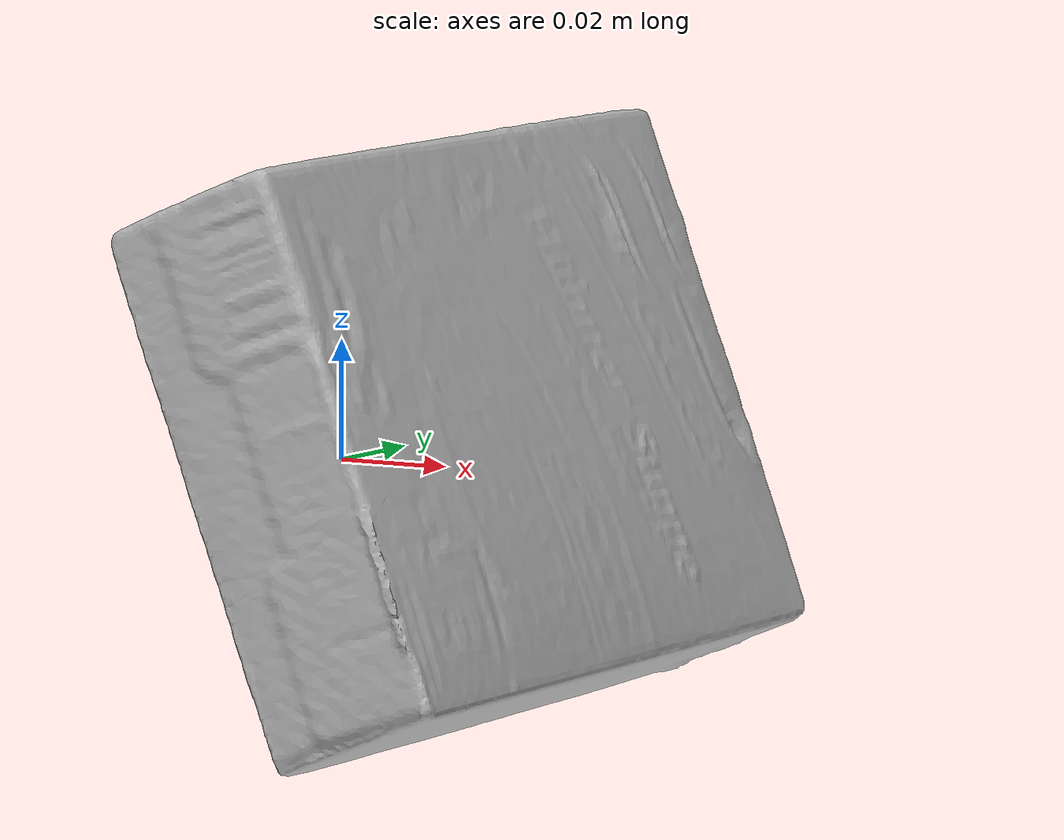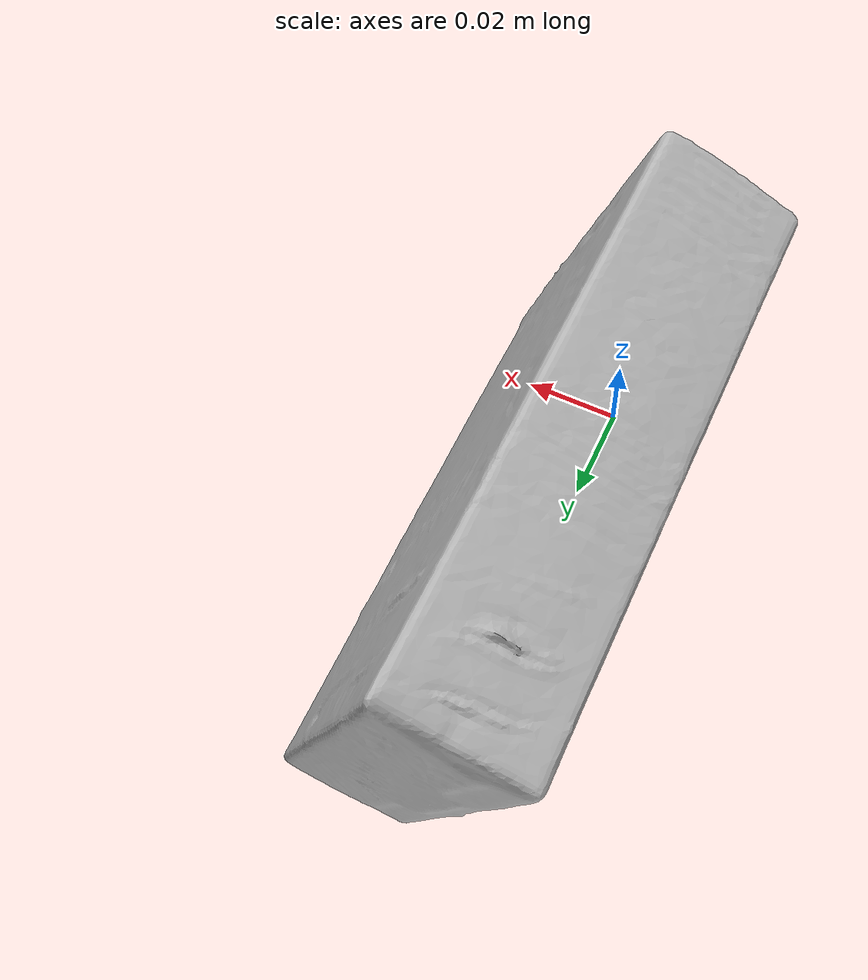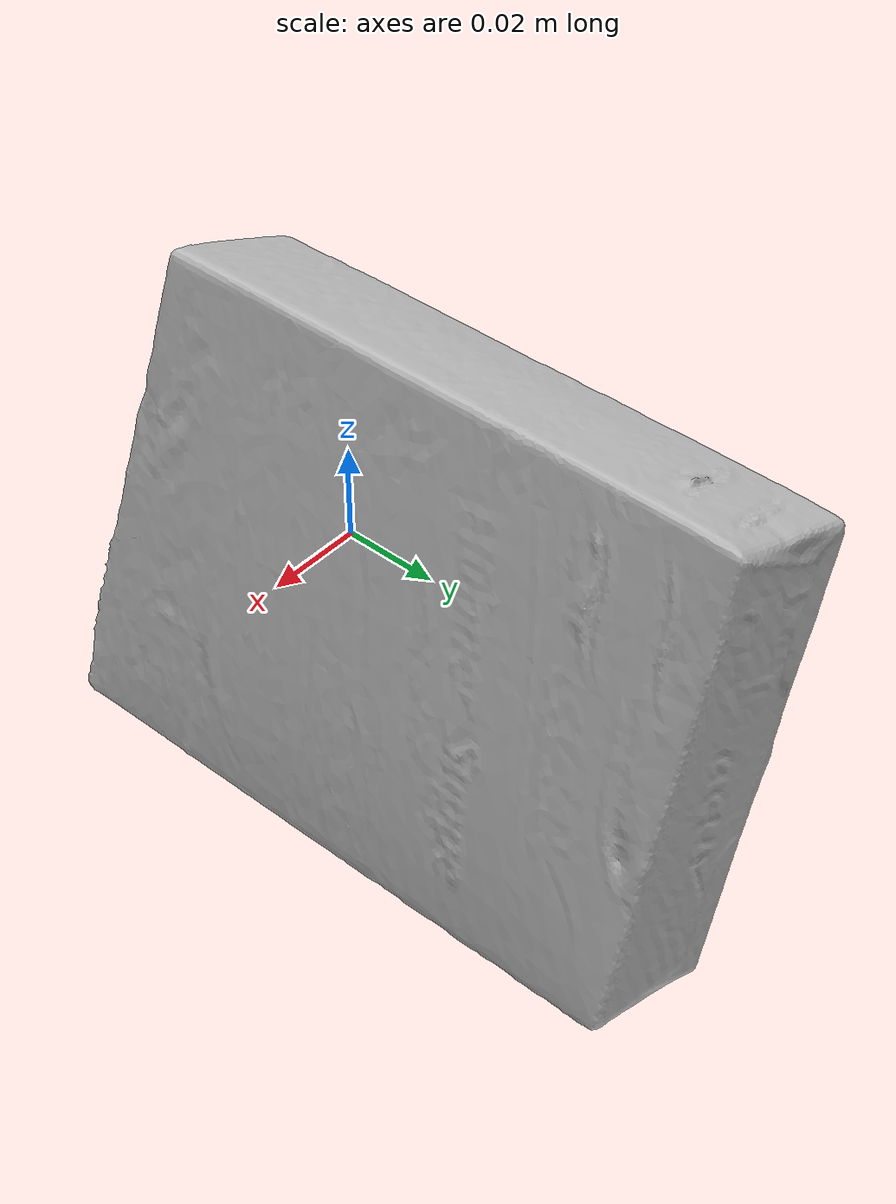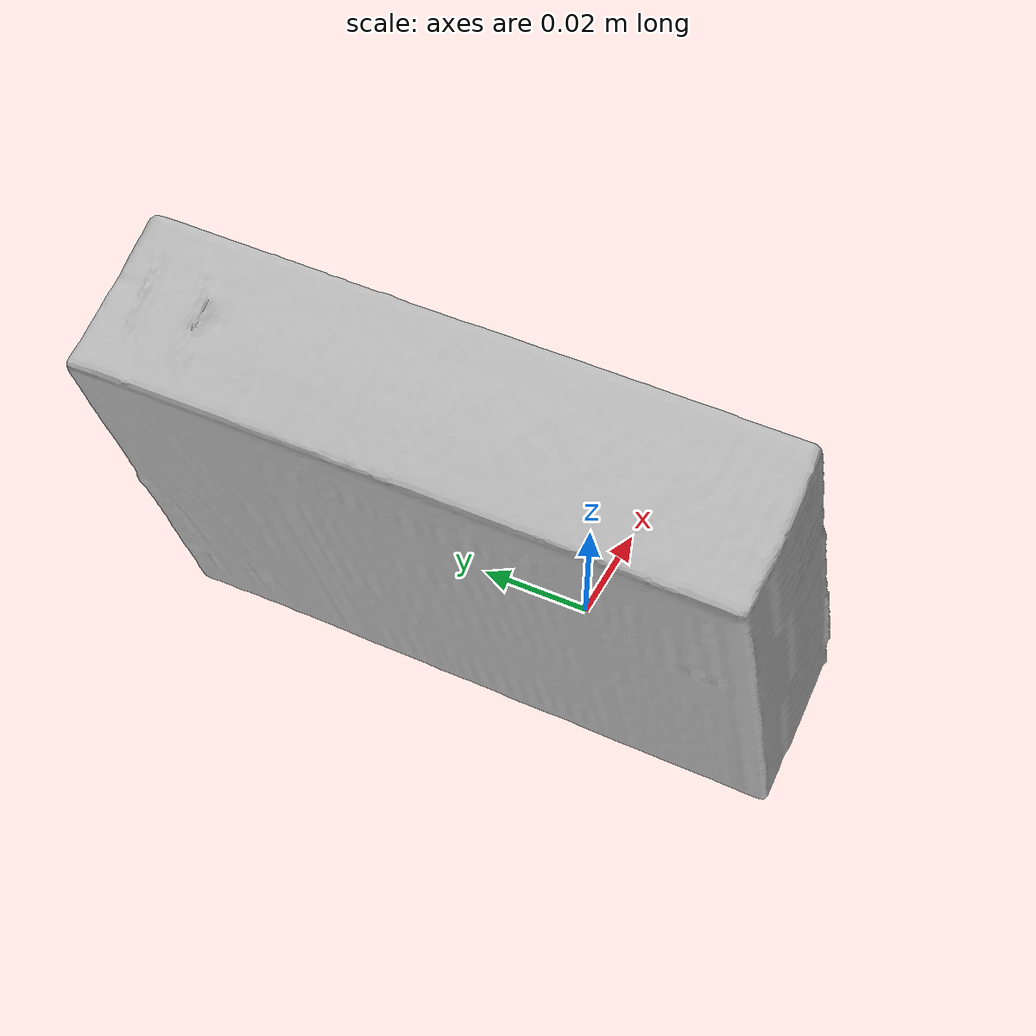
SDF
<?xml version='1.0'?>
<sdf version="1.4">
  <model name="ChickenSoup">
    <static>false</static>
    <link name="link">
      <inertial>
        <pose>0.008371799465073246 0.027880407498798637 0.002577136765930606 -1.5804944844630138 0.3513408537103269 3.1371427225093043</pose>
        <mass>0.040575002552052715</mass>
        <inertia>
          <ixx>8.508774411130463e-05</ixx>
          <ixy>7.36254181602045e-21</ixy>
          <ixz>-5.343091210607022e-21</ixz>
          <iyy>5.9135657020649226e-05</iyy>
          <iyz>-6.743674897147851e-21</iyz>
          <izz>3.3439082992398946e-05</izz>
        </inertia>
      </inertial>
      <collision name="collision">
        <geometry>
          <mesh>
            <!-- Use a downsampled mesh for collisions -->
            <uri>model:///ChickenSoup/ChickenSoup_250_collision.obj</uri>
	        </mesh>
        </geometry>
        <surface>
      </surface>
      </collision>
      <visual name="visual">
        <geometry>
          <mesh>
            <uri>model:///ChickenSoup/ChickenSoup_25k_tex.obj</uri>
	        </mesh>
        </geometry>
        <material>
          <script>
            <uri>model:///ChickenSoup/ChickenSoup.material</uri>
            <name>ChickenSoup</name>
          </script>
        </material>
      </visual>
    </link>
  </model>
</sdf>
